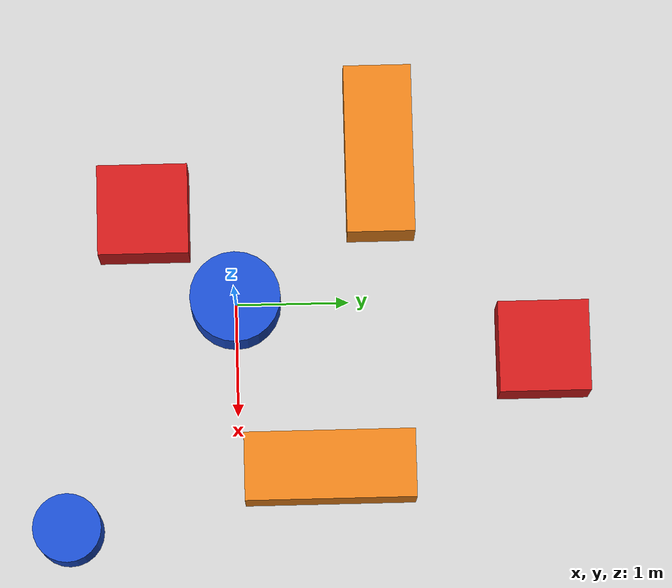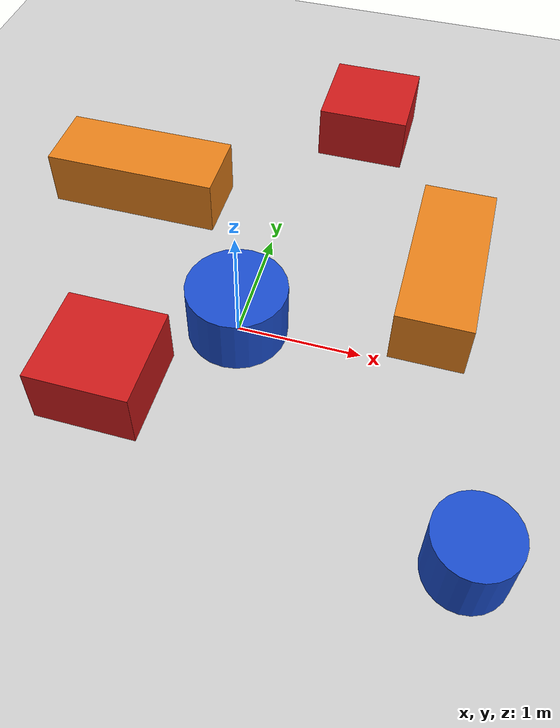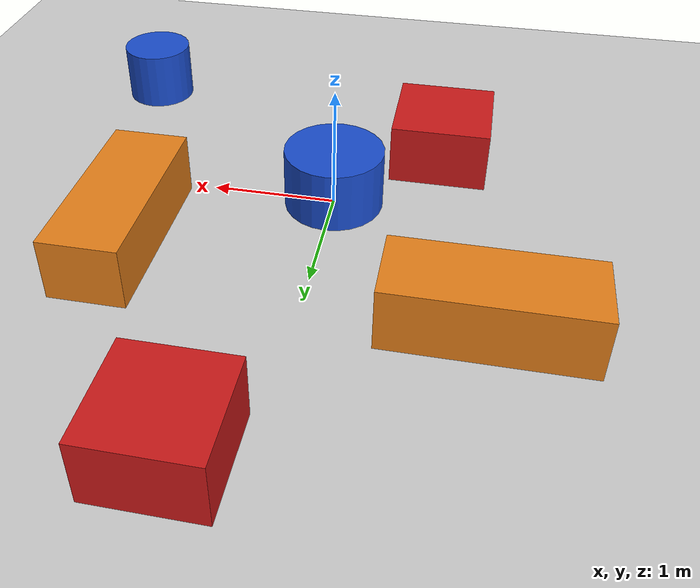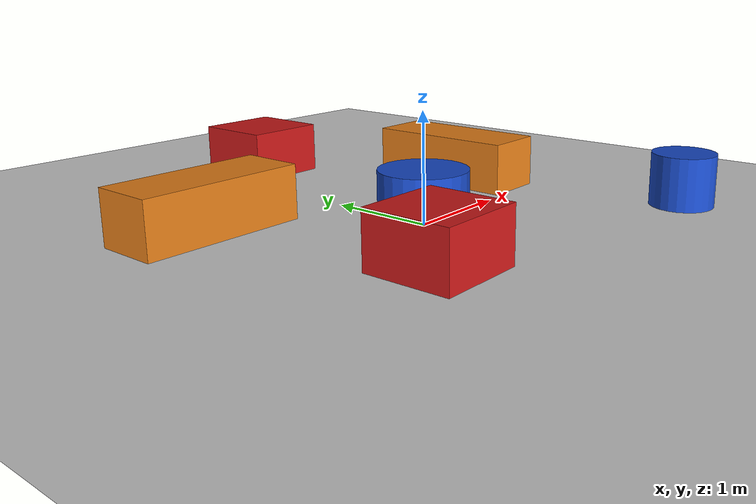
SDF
<sdf version="1.6">
 <world name="senaryo1_kolay">
  <physics type="ode">
   <max_step_size>0.001</max_step_size>
   <real_time_factor>1</real_time_factor>
   <real_time_update_rate>1000</real_time_update_rate>
  </physics>
  <scene><shadows>false</shadows></scene>
  <include><uri>model://ground_plane</uri></include>
  <include><uri>model://sun</uri></include>
  <model name="kutu_1">
   <static>true</static>
   <pose>-0.8 -0.8 0.25 0 0 0</pose>
   <link name="link">
    <collision name="collision"><geometry><box><size>0.8 0.8 0.5</size></box></geometry></collision>
    <visual name="visual">
     <geometry><box><size>0.8 0.8 0.5</size></box></geometry>
     <material><ambient>0.8 0.1 0.1 1</ambient><diffuse>0.8 0.1 0.1 1</diffuse></material>
    </visual>
   </link>
  </model>
  <model name="silindir_1">
   <static>true</static>
   <pose>0.0 0.0 0.25 0 0 0</pose>
   <link name="link">
    <collision name="collision">
     <geometry><cylinder><radius>0.4</radius><length>0.5</length></cylinder></geometry>
    </collision>
    <visual name="visual">
     <geometry><cylinder><radius>0.4</radius><length>0.5</length></cylinder></geometry>
     <material><ambient>0.1 0.3 0.8 1</ambient><diffuse>0.1 0.3 0.8 1</diffuse></material>
    </visual>
   </link>
  </model>
  <model name="kutu_2">
   <static>true</static>
   <pose>1.5 0.8 0.25 0 0 0</pose>
   <link name="link">
    <collision name="collision"><geometry><box><size>0.6 1.5 0.5</size></box></geometry></collision>
    <visual name="visual">
     <geometry><box><size>0.6 1.5 0.5</size></box></geometry>
     <material><ambient>0.9 0.5 0.1 1</ambient><diffuse>0.9 0.5 0.1 1</diffuse></material>
    </visual>
   </link>
  </model>
  <model name="kutu_3">
   <static>true</static>
   <pose>-1.3 1.3 0.25 0 0 0</pose>
   <link name="link">
    <collision name="collision"><geometry><box><size>1.5 0.6 0.5</size></box></geometry></collision>
    <visual name="visual">
     <geometry><box><size>1.5 0.6 0.5</size></box></geometry>
     <material><ambient>0.9 0.5 0.1 1</ambient><diffuse>0.9 0.5 0.1 1</diffuse></material>
    </visual>
   </link>
  </model>
  <model name="silindir_2">
   <static>true</static>
   <pose>2.0 -1.5 0.25 0 0 0</pose>
   <link name="link">
    <collision name="collision">
     <geometry><cylinder><radius>0.3</radius><length>0.5</length></cylinder></geometry>
    </collision>
    <visual name="visual">
     <geometry><cylinder><radius>0.3</radius><length>0.5</length></cylinder></geometry>
     <material><ambient>0.1 0.3 0.8 1</ambient><diffuse>0.1 0.3 0.8 1</diffuse></material>
    </visual>
   </link>
  </model>
  <model name="kutu_4">
   <static>true</static>
   <pose>0.5 2.7 0.25 0 0 0</pose>
   <link name="link">
    <collision name="collision"><geometry><box><size>0.8 0.8 0.5</size></box></geometry></collision>
    <visual name="visual">
     <geometry><box><size>0.8 0.8 0.5</size></box></geometry>
     <material><ambient>0.8 0.1 0.1 1</ambient><diffuse>0.8 0.1 0.1 1</diffuse></material>
    </visual>
   </link>
  </model>
 </world>
</sdf>
